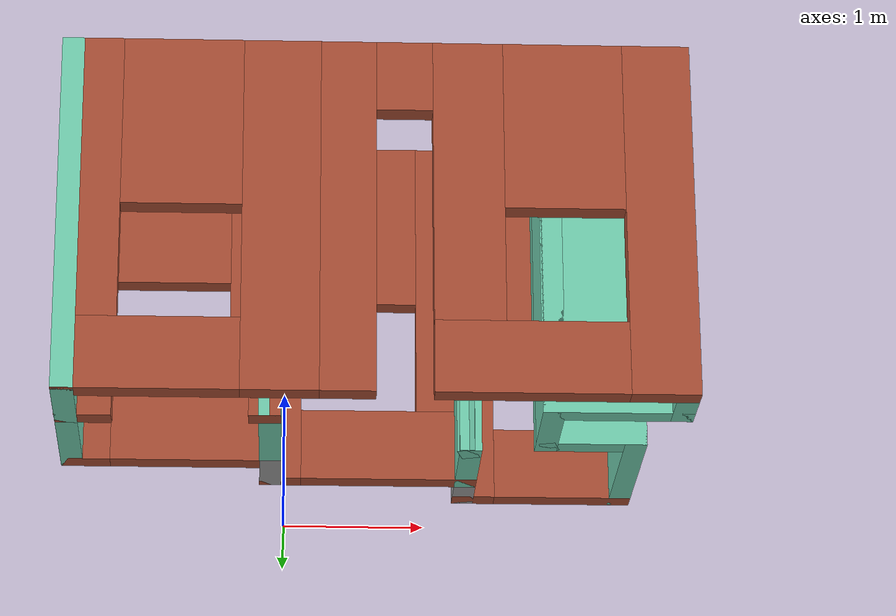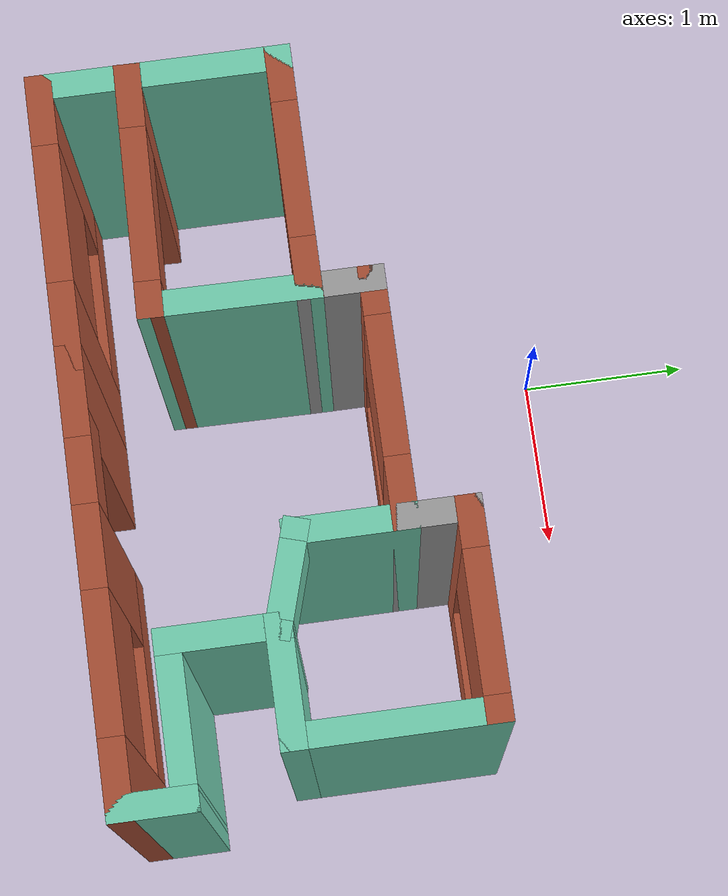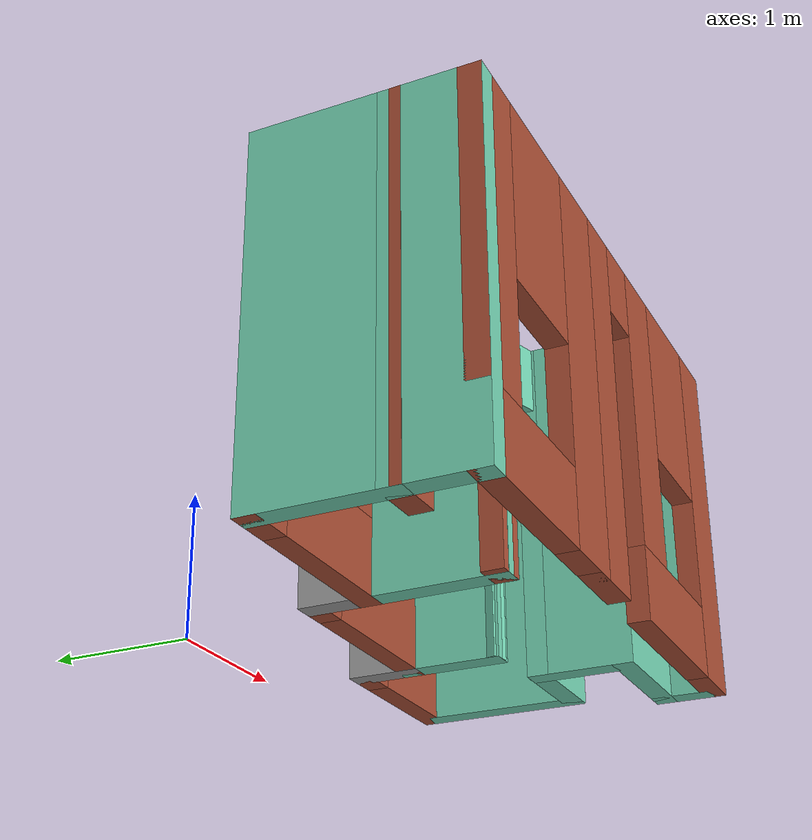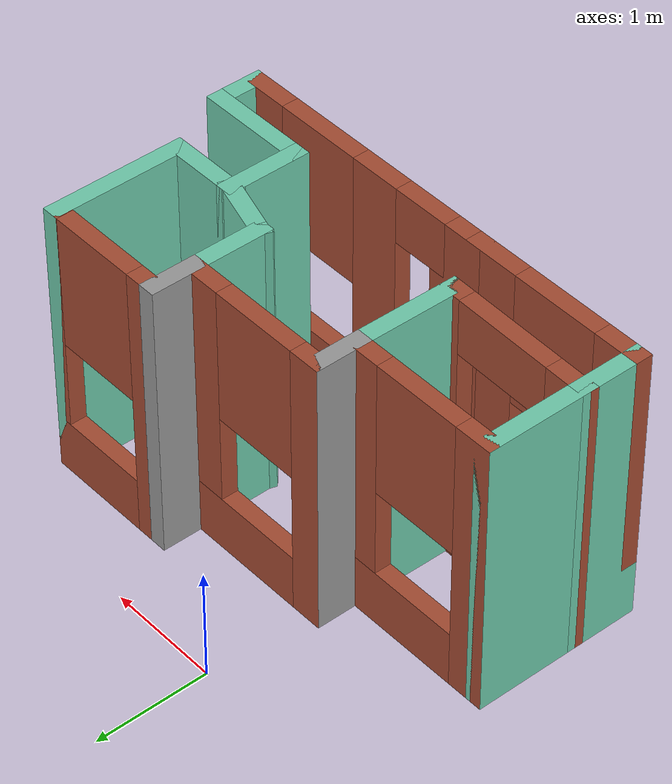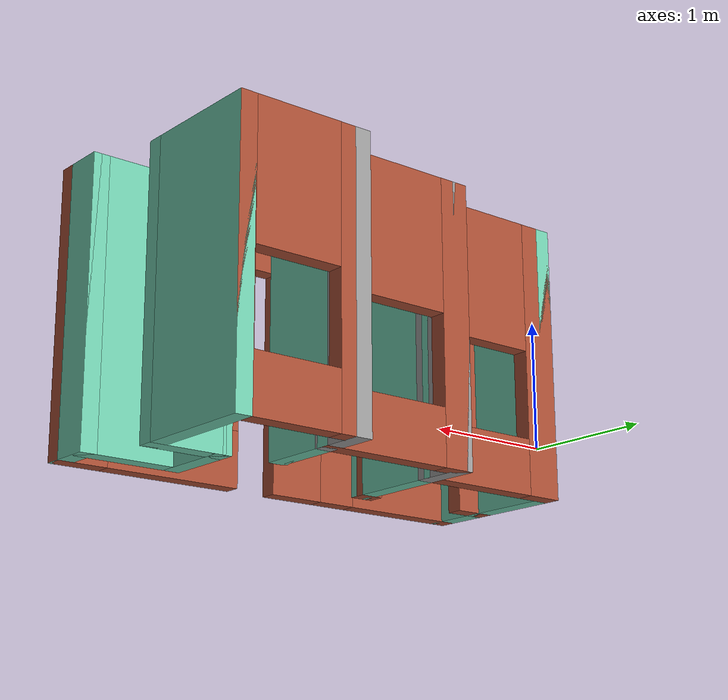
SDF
<?xml version='1.0'?>
<sdf version='1.7'>
  <model name='House'>
    <pose>0.57417 -1.3725 0 0 -0 0</pose>
    <link name='Wall_0'>
      <collision name='Wall_0_Collision'>
        <geometry>
          <box>
            <size>1 0.15 2.5</size>
          </box>
        </geometry>
        <pose>0 0 1.25 0 -0 0</pose>
      </collision>
      <visual name='Wall_0_Visual'>
        <pose>0 0 1.25 0 -0 0</pose>
        <geometry>
          <box>
            <size>1 0.15 2.5</size>
          </box>
        </geometry>
        <material>
          <script>
            <uri>file://media/materials/scripts/gazebo.material</uri>
            <name>Gazebo/Grey</name>
          </script>
          <ambient>0.435294 0.796078 0.67451 1</ambient>
        </material>
        <meta>
          <layer>0</layer>
        </meta>
      </visual>
      <pose>-2.02417 -0.3725 0 0 -0 1.5708</pose>
    </link>
    <link name='Wall_1'>
      <pose>-1.34917 0.0525 0 0 -0 0</pose>
      <visual name='Wall_1_Visual_0'>
        <pose>-0.5825 0 1.25 0 -0 0</pose>
        <geometry>
          <box>
            <size>0.335 0.15 2.5</size>
          </box>
        </geometry>
        <material>
          <script>
            <uri>file://media/materials/scripts/gazebo.material</uri>
            <name>Gazebo/Bricks</name>
          </script>
          <ambient>0.435294 0.796078 0.67451 1</ambient>
        </material>
        <meta>
          <layer>0</layer>
        </meta>
      </visual>
      <collision name='Wall_1_Collision_0'>
        <geometry>
          <box>
            <size>0.335 0.15 2.5</size>
          </box>
        </geometry>
        <pose>-0.5825 0 1.25 0 -0 0</pose>
      </collision>
      <visual name='Wall_1_Visual_1'>
        <pose>0.1675 0 0.25 0 -0 0</pose>
        <geometry>
          <box>
            <size>1.165 0.15 0.5</size>
          </box>
        </geometry>
        <material>
          <script>
            <uri>file://media/materials/scripts/gazebo.material</uri>
            <name>Gazebo/Bricks</name>
          </script>
          <ambient>0.435294 0.796078 0.67451 1</ambient>
        </material>
        <meta>
          <layer>0</layer>
        </meta>
      </visual>
      <collision name='Wall_1_Collision_1'>
        <geometry>
          <box>
            <size>1.165 0.15 0.5</size>
          </box>
        </geometry>
        <pose>0.1675 0 0.25 0 -0 0</pose>
      </collision>
      <visual name='Wall_1_Visual_2'>
        <pose>0.5675 0 1.5 0 -0 0</pose>
        <geometry>
          <box>
            <size>0.365 0.15 2</size>
          </box>
        </geometry>
        <material>
          <script>
            <uri>file://media/materials/scripts/gazebo.material</uri>
            <name>Gazebo/Bricks</name>
          </script>
          <ambient>0.435294 0.796078 0.67451 1</ambient>
        </material>
        <meta>
          <layer>0</layer>
        </meta>
      </visual>
      <collision name='Wall_1_Collision_2'>
        <geometry>
          <box>
            <size>0.365 0.15 2</size>
          </box>
        </geometry>
        <pose>0.5675 0 1.5 0 -0 0</pose>
      </collision>
      <visual name='Wall_1_Visual_3'>
        <pose>-0.015 0 1.9 0 -0 0</pose>
        <geometry>
          <box>
            <size>0.8 0.15 1.2</size>
          </box>
        </geometry>
        <material>
          <script>
            <uri>file://media/materials/scripts/gazebo.material</uri>
            <name>Gazebo/Bricks</name>
          </script>
          <ambient>0.435294 0.796078 0.67451 1</ambient>
        </material>
        <meta>
          <layer>0</layer>
        </meta>
      </visual>
      <collision name='Wall_1_Collision_3'>
        <geometry>
          <box>
            <size>0.8 0.15 1.2</size>
          </box>
        </geometry>
        <pose>-0.015 0 1.9 0 -0 0</pose>
      </collision>
    </link>
    <link name='Wall_10'>
      <collision name='Wall_10_Collision'>
        <geometry>
          <box>
            <size>0.5 0.15 2.5</size>
          </box>
        </geometry>
        <pose>0 0 1.25 0 -0 0</pose>
      </collision>
      <visual name='Wall_10_Visual'>
        <pose>0 0 1.25 0 -0 0</pose>
        <geometry>
          <box>
            <size>0.5 0.15 2.5</size>
          </box>
        </geometry>
        <material>
          <script>
            <uri>file://media/materials/scripts/gazebo.material</uri>
            <name>Gazebo/Grey</name>
          </script>
          <ambient>0.435294 0.796078 0.67451 1</ambient>
        </material>
        <meta>
          <layer>0</layer>
        </meta>
      </visual>
      <pose>2.02583 -1.1225 0 0 -0 -1.5708</pose>
    </link>
    <link name='Wall_11'>
      <pose>0.97583 -1.2975 0 0 -0 3.14159</pose>
      <visual name='Wall_11_Visual_0'>
        <pose>-0.8975 0 1.25 0 -0 0</pose>
        <geometry>
          <box>
            <size>0.455 0.15 2.5</size>
          </box>
        </geometry>
        <material>
          <script>
            <uri>file://media/materials/scripts/gazebo.material</uri>
            <name>Gazebo/Bricks</name>
          </script>
          <ambient>0.435294 0.796078 0.67451 1</ambient>
        </material>
        <meta>
          <layer>0</layer>
        </meta>
      </visual>
      <collision name='Wall_11_Collision_0'>
        <geometry>
          <box>
            <size>0.455 0.15 2.5</size>
          </box>
        </geometry>
        <pose>-0.8975 0 1.25 0 -0 0</pose>
      </collision>
      <visual name='Wall_11_Visual_1'>
        <pose>-0.035 0 0.25 0 -0 0</pose>
        <geometry>
          <box>
            <size>1.27 0.15 0.5</size>
          </box>
        </geometry>
        <material>
          <script>
            <uri>file://media/materials/scripts/gazebo.material</uri>
            <name>Gazebo/Bricks</name>
          </script>
          <ambient>0.435294 0.796078 0.67451 1</ambient>
        </material>
        <meta>
          <layer>0</layer>
        </meta>
      </visual>
      <collision name='Wall_11_Collision_1'>
        <geometry>
          <box>
            <size>1.27 0.15 0.5</size>
          </box>
        </geometry>
        <pose>-0.035 0 0.25 0 -0 0</pose>
      </collision>
      <visual name='Wall_11_Visual_2'>
        <pose>0.365 0 1.5 0 -0 0</pose>
        <geometry>
          <box>
            <size>0.47 0.15 2</size>
          </box>
        </geometry>
        <material>
          <script>
            <uri>file://media/materials/scripts/gazebo.material</uri>
            <name>Gazebo/Bricks</name>
          </script>
          <ambient>0.435294 0.796078 0.67451 1</ambient>
        </material>
        <meta>
          <layer>0</layer>
        </meta>
      </visual>
      <collision name='Wall_11_Collision_2'>
        <geometry>
          <box>
            <size>0.47 0.15 2</size>
          </box>
        </geometry>
        <pose>0.365 0 1.5 0 -0 0</pose>
      </collision>
      <visual name='Wall_11_Visual_3'>
        <pose>-0.27 0 1.9 0 -0 0</pose>
        <geometry>
          <box>
            <size>0.8 0.15 1.2</size>
          </box>
        </geometry>
        <material>
          <script>
            <uri>file://media/materials/scripts/gazebo.material</uri>
            <name>Gazebo/Bricks</name>
          </script>
          <ambient>0.435294 0.796078 0.67451 1</ambient>
        </material>
        <meta>
          <layer>0</layer>
        </meta>
      </visual>
      <collision name='Wall_11_Collision_3'>
        <geometry>
          <box>
            <size>0.8 0.15 1.2</size>
          </box>
        </geometry>
        <pose>-0.27 0 1.9 0 -0 0</pose>
      </collision>
      <visual name='Wall_11_Visual_4'>
        <pose>0.8625 0 2.25 0 -0 0</pose>
        <geometry>
          <box>
            <size>0.525 0.15 0.5</size>
          </box>
        </geometry>
        <material>
          <script>
            <uri>file://media/materials/scripts/gazebo.material</uri>
            <name>Gazebo/Bricks</name>
          </script>
          <ambient>0.435294 0.796078 0.67451 1</ambient>
        </material>
        <meta>
          <layer>0</layer>
        </meta>
      </visual>
      <collision name='Wall_11_Collision_4'>
        <geometry>
          <box>
            <size>0.525 0.15 0.5</size>
          </box>
        </geometry>
        <pose>0.8625 0 2.25 0 -0 0</pose>
      </collision>
    </link>
    <link name='Wall_15'>
      <pose>-1.23417 -1.2975 0 0 -0 3.14159</pose>
      <visual name='Wall_15_Visual_0'>
        <pose>-0.607813 0 1.25 0 -0 0</pose>
        <geometry>
          <box>
            <size>0.514375 0.15 2.5</size>
          </box>
        </geometry>
        <material>
          <script>
            <uri>file://media/materials/scripts/gazebo.material</uri>
            <name>Gazebo/Bricks</name>
          </script>
          <ambient>0.435294 0.796078 0.67451 1</ambient>
        </material>
        <meta>
          <layer>0</layer>
        </meta>
      </visual>
      <collision name='Wall_15_Collision_0'>
        <geometry>
          <box>
            <size>0.514375 0.15 2.5</size>
          </box>
        </geometry>
        <pose>-0.607813 0 1.25 0 -0 0</pose>
      </collision>
      <visual name='Wall_15_Visual_1'>
        <pose>0.257187 0 0.25 0 -0 0</pose>
        <geometry>
          <box>
            <size>1.21562 0.15 0.5</size>
          </box>
        </geometry>
        <material>
          <script>
            <uri>file://media/materials/scripts/gazebo.material</uri>
            <name>Gazebo/Bricks</name>
          </script>
          <ambient>0.435294 0.796078 0.67451 1</ambient>
        </material>
        <meta>
          <layer>0</layer>
        </meta>
      </visual>
      <collision name='Wall_15_Collision_1'>
        <geometry>
          <box>
            <size>1.21562 0.15 0.5</size>
          </box>
        </geometry>
        <pose>0.257187 0 0.25 0 -0 0</pose>
      </collision>
      <visual name='Wall_15_Visual_2'>
        <pose>0.657187 0 1.5 0 -0 0</pose>
        <geometry>
          <box>
            <size>0.415625 0.15 2</size>
          </box>
        </geometry>
        <material>
          <script>
            <uri>file://media/materials/scripts/gazebo.material</uri>
            <name>Gazebo/Bricks</name>
          </script>
          <ambient>0.435294 0.796078 0.67451 1</ambient>
        </material>
        <meta>
          <layer>0</layer>
        </meta>
      </visual>
      <collision name='Wall_15_Collision_2'>
        <geometry>
          <box>
            <size>0.415625 0.15 2</size>
          </box>
        </geometry>
        <pose>0.657187 0 1.5 0 -0 0</pose>
      </collision>
      <visual name='Wall_15_Visual_3'>
        <pose>0.049375 0 1.9 0 -0 0</pose>
        <geometry>
          <box>
            <size>0.8 0.15 1.2</size>
          </box>
        </geometry>
        <material>
          <script>
            <uri>file://media/materials/scripts/gazebo.material</uri>
            <name>Gazebo/Bricks</name>
          </script>
          <ambient>0.435294 0.796078 0.67451 1</ambient>
        </material>
        <meta>
          <layer>0</layer>
        </meta>
      </visual>
      <collision name='Wall_15_Collision_3'>
        <geometry>
          <box>
            <size>0.8 0.15 1.2</size>
          </box>
        </geometry>
        <pose>0.049375 0 1.9 0 -0 0</pose>
      </collision>
    </link>
    <link name='Wall_16'>
      <collision name='Wall_16_Collision'>
        <geometry>
          <box>
            <size>0.65 0.15 2.5</size>
          </box>
        </geometry>
        <pose>0 0 1.25 0 -0 0</pose>
      </collision>
      <visual name='Wall_16_Visual'>
        <pose>0 0 1.25 0 -0 0</pose>
        <geometry>
          <box>
            <size>0.65 0.15 2.5</size>
          </box>
        </geometry>
        <material>
          <script>
            <uri>file://media/materials/scripts/gazebo.material</uri>
            <name>Gazebo/Grey</name>
          </script>
          <ambient>0.435294 0.796078 0.67451 1</ambient>
        </material>
        <meta>
          <layer>0</layer>
        </meta>
      </visual>
      <pose>-2.02417 -1.0475 0 0 -0 1.5708</pose>
    </link>
    <link name='Wall_18'>
      <collision name='Wall_18_Collision'>
        <geometry>
          <box>
            <size>0.52 0.15 2.5</size>
          </box>
        </geometry>
        <pose>0 0 1.25 0 -0 0</pose>
      </collision>
      <visual name='Wall_18_Visual'>
        <pose>0 0 1.25 0 -0 0</pose>
        <geometry>
          <box>
            <size>0.52 0.15 2.5</size>
          </box>
        </geometry>
        <material>
          <script>
            <uri>file://media/materials/scripts/gazebo.material</uri>
            <name>Gazebo/Bricks</name>
          </script>
          <ambient>0.435294 0.796078 0.67451 1</ambient>
        </material>
        <meta>
          <layer>0</layer>
        </meta>
      </visual>
      <pose>-0.25917 -1.2975 0 0 -0 0</pose>
    </link>
    <link name='Wall_2'>
      <collision name='Wall_2_Collision'>
        <geometry>
          <box>
            <size>0.5 0.15 2.5</size>
          </box>
        </geometry>
        <pose>0 0 1.25 0 -0 0</pose>
      </collision>
      <visual name='Wall_2_Visual'>
        <pose>0 0 1.25 0 -0 0</pose>
        <geometry>
          <box>
            <size>0.5 0.15 2.5</size>
          </box>
        </geometry>
        <material>
          <script>
            <uri>file://media/materials/scripts/gazebo.material</uri>
            <name>Gazebo/Grey</name>
          </script>
          <ambient>1 1 1 1</ambient>
        </material>
        <meta>
          <layer>0</layer>
        </meta>
      </visual>
      <pose>-0.67417 0.2275 0 0 -0 1.5708</pose>
    </link>
    <link name='Wall_20'>
      <collision name='Wall_20_Collision'>
        <geometry>
          <box>
            <size>1.03006 0.15 2.5</size>
          </box>
        </geometry>
        <pose>0 0 1.25 0 -0 0</pose>
      </collision>
      <visual name='Wall_20_Visual'>
        <pose>0 0 1.25 0 -0 0</pose>
        <geometry>
          <box>
            <size>1.03006 0.15 2.5</size>
          </box>
        </geometry>
        <material>
          <script>
            <uri>file://media/materials/scripts/gazebo.material</uri>
            <name>Gazebo/Grey</name>
          </script>
          <ambient>0.435294 0.796078 0.67451 1</ambient>
        </material>
        <meta>
          <layer>0</layer>
        </meta>
      </visual>
      <pose>-0.67917 -0.3875 0 0 -0 1.55943</pose>
    </link>
    <link name='Wall_22'>
      <pose>-1.35417 -0.8125 0 0 -0 -0.022384</pose>
      <visual name='Wall_22_Visual_0'>
        <pose>-0.557426 0 1.25 0 -0 0</pose>
        <geometry>
          <box>
            <size>0.375484 0.15 2.5</size>
          </box>
        </geometry>
        <material>
          <script>
            <uri>file://media/materials/scripts/gazebo.material</uri>
            <name>Gazebo/Bricks</name>
          </script>
          <ambient>0.435294 0.796078 0.67451 1</ambient>
        </material>
        <meta>
          <layer>0</layer>
        </meta>
      </visual>
      <collision name='Wall_22_Collision_0'>
        <geometry>
          <box>
            <size>0.375484 0.15 2.5</size>
          </box>
        </geometry>
        <pose>-0.557426 0 1.25 0 -0 0</pose>
      </collision>
      <visual name='Wall_22_Visual_1'>
        <pose>0.637742 0 1.25 0 -0 0</pose>
        <geometry>
          <box>
            <size>0.214852 0.15 2.5</size>
          </box>
        </geometry>
        <material>
          <script>
            <uri>file://media/materials/scripts/gazebo.material</uri>
            <name>Gazebo/Bricks</name>
          </script>
          <ambient>0.435294 0.796078 0.67451 1</ambient>
        </material>
        <meta>
          <layer>0</layer>
        </meta>
      </visual>
      <collision name='Wall_22_Collision_1'>
        <geometry>
          <box>
            <size>0.214852 0.15 2.5</size>
          </box>
        </geometry>
        <pose>0.637742 0 1.25 0 -0 0</pose>
      </collision>
      <visual name='Wall_22_Visual_2'>
        <pose>0.080316 0 2.25 0 -0 0</pose>
        <geometry>
          <box>
            <size>0.9 0.15 0.5</size>
          </box>
        </geometry>
        <material>
          <script>
            <uri>file://media/materials/scripts/gazebo.material</uri>
            <name>Gazebo/Bricks</name>
          </script>
          <ambient>0.435294 0.796078 0.67451 1</ambient>
        </material>
        <meta>
          <layer>0</layer>
        </meta>
      </visual>
      <collision name='Wall_22_Collision_2'>
        <geometry>
          <box>
            <size>0.9 0.15 0.5</size>
          </box>
        </geometry>
        <pose>0.080316 0 2.25 0 -0 0</pose>
      </collision>
    </link>
    <link name='Wall_24'>
      <collision name='Wall_24_Collision'>
        <geometry>
          <box>
            <size>0.75 0.15 2.5</size>
          </box>
        </geometry>
        <pose>0 0 1.25 0 -0 0</pose>
      </collision>
      <visual name='Wall_24_Visual'>
        <pose>0 0 1.25 0 -0 0</pose>
        <geometry>
          <box>
            <size>0.75 0.15 2.5</size>
          </box>
        </geometry>
        <material>
          <script>
            <uri>file://media/materials/scripts/gazebo.material</uri>
            <name>Gazebo/Grey</name>
          </script>
          <ambient>0.435294 0.796078 0.67451 1</ambient>
        </material>
        <meta>
          <layer>0</layer>
        </meta>
      </visual>
      <pose>0.67583 0.1025 0 0 -0 -1.5708</pose>
    </link>
    <link name='Wall_25'>
      <pose>0.92583 -0.2725 0 0 -0 -0.291457</pose>
      <visual name='Wall_25_Visual_0'>
        <pose>-0.274473 0 1.25 0 -0 0</pose>
        <geometry>
          <box>
            <size>0.12307 0.15 2.5</size>
          </box>
        </geometry>
        <material>
          <script>
            <uri>file://media/materials/scripts/gazebo.material</uri>
            <name>Gazebo/Grey</name>
          </script>
          <ambient>0.435294 0.796078 0.67451 1</ambient>
        </material>
        <meta>
          <layer>0</layer>
        </meta>
      </visual>
      <collision name='Wall_25_Collision_0'>
        <geometry>
          <box>
            <size>0.12307 0.15 2.5</size>
          </box>
        </geometry>
        <pose>-0.274473 0 1.25 0 -0 0</pose>
      </collision>
      <visual name='Wall_25_Visual_1'>
        <pose>0.28022 0 1.25 0 -0 0</pose>
        <geometry>
          <box>
            <size>0.111576 0.15 2.5</size>
          </box>
        </geometry>
        <material>
          <script>
            <uri>file://media/materials/scripts/gazebo.material</uri>
            <name>Gazebo/Grey</name>
          </script>
          <ambient>0.435294 0.796078 0.67451 1</ambient>
        </material>
        <meta>
          <layer>0</layer>
        </meta>
      </visual>
      <collision name='Wall_25_Collision_1'>
        <geometry>
          <box>
            <size>0.111576 0.15 2.5</size>
          </box>
        </geometry>
        <pose>0.28022 0 1.25 0 -0 0</pose>
      </collision>
      <visual name='Wall_25_Visual_2'>
        <pose>0.005747 0 2.25 0 -0 0</pose>
        <geometry>
          <box>
            <size>0.43737 0.15 0.5</size>
          </box>
        </geometry>
        <material>
          <script>
            <uri>file://media/materials/scripts/gazebo.material</uri>
            <name>Gazebo/Grey</name>
          </script>
          <ambient>0.435294 0.796078 0.67451 1</ambient>
        </material>
        <meta>
          <layer>0</layer>
        </meta>
      </visual>
      <collision name='Wall_25_Collision_2'>
        <geometry>
          <box>
            <size>0.43737 0.15 0.5</size>
          </box>
        </geometry>
        <pose>0.005747 0 2.25 0 -0 0</pose>
      </collision>
    </link>
    <link name='Wall_3'>
      <pose>0.00083 0.4025 0 0 -0 0</pose>
      <visual name='Wall_3_Visual_0'>
        <pose>-0.6075 0 1.25 0 -0 0</pose>
        <geometry>
          <box>
            <size>0.285 0.15 2.5</size>
          </box>
        </geometry>
        <material>
          <script>
            <uri>file://media/materials/scripts/gazebo.material</uri>
            <name>Gazebo/Bricks</name>
          </script>
          <ambient>0.435294 0.796078 0.67451 1</ambient>
        </material>
        <meta>
          <layer>0</layer>
        </meta>
      </visual>
      <collision name='Wall_3_Collision_0'>
        <geometry>
          <box>
            <size>0.285 0.15 2.5</size>
          </box>
        </geometry>
        <pose>-0.6075 0 1.25 0 -0 0</pose>
      </collision>
      <visual name='Wall_3_Visual_1'>
        <pose>0.1425 0 0.25 0 -0 0</pose>
        <geometry>
          <box>
            <size>1.215 0.15 0.5</size>
          </box>
        </geometry>
        <material>
          <script>
            <uri>file://media/materials/scripts/gazebo.material</uri>
            <name>Gazebo/Bricks</name>
          </script>
          <ambient>0.435294 0.796078 0.67451 1</ambient>
        </material>
        <meta>
          <layer>0</layer>
        </meta>
      </visual>
      <collision name='Wall_3_Collision_1'>
        <geometry>
          <box>
            <size>1.215 0.15 0.5</size>
          </box>
        </geometry>
        <pose>0.1425 0 0.25 0 -0 0</pose>
      </collision>
      <visual name='Wall_3_Visual_2'>
        <pose>0.5425 0 1.5 0 -0 0</pose>
        <geometry>
          <box>
            <size>0.415 0.15 2</size>
          </box>
        </geometry>
        <material>
          <script>
            <uri>file://media/materials/scripts/gazebo.material</uri>
            <name>Gazebo/Bricks</name>
          </script>
          <ambient>0.435294 0.796078 0.67451 1</ambient>
        </material>
        <meta>
          <layer>0</layer>
        </meta>
      </visual>
      <collision name='Wall_3_Collision_2'>
        <geometry>
          <box>
            <size>0.415 0.15 2</size>
          </box>
        </geometry>
        <pose>0.5425 0 1.5 0 -0 0</pose>
      </collision>
      <visual name='Wall_3_Visual_3'>
        <pose>-0.065 0 1.9 0 -0 0</pose>
        <geometry>
          <box>
            <size>0.8 0.15 1.2</size>
          </box>
        </geometry>
        <material>
          <script>
            <uri>file://media/materials/scripts/gazebo.material</uri>
            <name>Gazebo/Bricks</name>
          </script>
          <ambient>0.435294 0.796078 0.67451 1</ambient>
        </material>
        <meta>
          <layer>0</layer>
        </meta>
      </visual>
      <collision name='Wall_3_Collision_3'>
        <geometry>
          <box>
            <size>0.8 0.15 1.2</size>
          </box>
        </geometry>
        <pose>-0.065 0 1.9 0 -0 0</pose>
      </collision>
    </link>
    <link name='Wall_4'>
      <collision name='Wall_4_Collision'>
        <geometry>
          <box>
            <size>0.5 0.15 2.5</size>
          </box>
        </geometry>
        <pose>0 0 1.25 0 -0 0</pose>
      </collision>
      <visual name='Wall_4_Visual'>
        <pose>0 0 1.25 0 -0 0</pose>
        <geometry>
          <box>
            <size>0.5 0.15 2.5</size>
          </box>
        </geometry>
        <material>
          <script>
            <uri>file://media/materials/scripts/gazebo.material</uri>
            <name>Gazebo/Grey</name>
          </script>
          <ambient>1 1 1 1</ambient>
        </material>
        <meta>
          <layer>0</layer>
        </meta>
      </visual>
      <pose>0.67583 0.5775 0 0 -0 1.5708</pose>
    </link>
    <link name='Wall_5'>
      <pose>1.22583 0.7525 0 0 -0 0</pose>
      <visual name='Wall_5_Visual_0'>
        <pose>-0.4775 0 1.25 0 -0 0</pose>
        <geometry>
          <box>
            <size>0.295 0.15 2.5</size>
          </box>
        </geometry>
        <material>
          <script>
            <uri>file://media/materials/scripts/gazebo.material</uri>
            <name>Gazebo/Bricks</name>
          </script>
          <ambient>0.435294 0.796078 0.67451 1</ambient>
        </material>
        <meta>
          <layer>0</layer>
        </meta>
      </visual>
      <collision name='Wall_5_Collision_0'>
        <geometry>
          <box>
            <size>0.295 0.15 2.5</size>
          </box>
        </geometry>
        <pose>-0.4775 0 1.25 0 -0 0</pose>
      </collision>
      <visual name='Wall_5_Visual_1'>
        <pose>0.1475 0 0.25 0 -0 0</pose>
        <geometry>
          <box>
            <size>0.955 0.15 0.5</size>
          </box>
        </geometry>
        <material>
          <script>
            <uri>file://media/materials/scripts/gazebo.material</uri>
            <name>Gazebo/Bricks</name>
          </script>
          <ambient>0.435294 0.796078 0.67451 1</ambient>
        </material>
        <meta>
          <layer>0</layer>
        </meta>
      </visual>
      <collision name='Wall_5_Collision_1'>
        <geometry>
          <box>
            <size>0.955 0.15 0.5</size>
          </box>
        </geometry>
        <pose>0.1475 0 0.25 0 -0 0</pose>
      </collision>
      <visual name='Wall_5_Visual_2'>
        <pose>0.5475 0 1.5 0 -0 0</pose>
        <geometry>
          <box>
            <size>0.155 0.15 2</size>
          </box>
        </geometry>
        <material>
          <script>
            <uri>file://media/materials/scripts/gazebo.material</uri>
            <name>Gazebo/Bricks</name>
          </script>
          <ambient>0.435294 0.796078 0.67451 1</ambient>
        </material>
        <meta>
          <layer>0</layer>
        </meta>
      </visual>
      <collision name='Wall_5_Collision_2'>
        <geometry>
          <box>
            <size>0.155 0.15 2</size>
          </box>
        </geometry>
        <pose>0.5475 0 1.5 0 -0 0</pose>
      </collision>
      <visual name='Wall_5_Visual_3'>
        <pose>0.07 0 1.9 0 -0 0</pose>
        <geometry>
          <box>
            <size>0.8 0.15 1.2</size>
          </box>
        </geometry>
        <material>
          <script>
            <uri>file://media/materials/scripts/gazebo.material</uri>
            <name>Gazebo/Bricks</name>
          </script>
          <ambient>0.435294 0.796078 0.67451 1</ambient>
        </material>
        <meta>
          <layer>0</layer>
        </meta>
      </visual>
      <collision name='Wall_5_Collision_3'>
        <geometry>
          <box>
            <size>0.8 0.15 1.2</size>
          </box>
        </geometry>
        <pose>0.07 0 1.9 0 -0 0</pose>
      </collision>
    </link>
    <link name='Wall_6'>
      <collision name='Wall_6_Collision'>
        <geometry>
          <box>
            <size>1.25 0.15 2.5</size>
          </box>
        </geometry>
        <pose>0 0 1.25 0 -0 0</pose>
      </collision>
      <visual name='Wall_6_Visual'>
        <pose>0 0 1.25 0 -0 0</pose>
        <geometry>
          <box>
            <size>1.25 0.15 2.5</size>
          </box>
        </geometry>
        <material>
          <script>
            <uri>file://media/materials/scripts/gazebo.material</uri>
            <name>Gazebo/Grey</name>
          </script>
          <ambient>0.435294 0.796078 0.67451 1</ambient>
        </material>
        <meta>
          <layer>0</layer>
        </meta>
      </visual>
      <pose>1.77583 0.2025 0 0 -0 -1.5708</pose>
    </link>
    <link name='Wall_7'>
      <collision name='Wall_7_Collision'>
        <geometry>
          <box>
            <size>0.75 0.15 2.5</size>
          </box>
        </geometry>
        <pose>0 0 1.25 0 -0 0</pose>
      </collision>
      <visual name='Wall_7_Visual'>
        <pose>0 0 1.25 0 -0 0</pose>
        <geometry>
          <box>
            <size>0.75 0.15 2.5</size>
          </box>
        </geometry>
        <material>
          <script>
            <uri>file://media/materials/scripts/gazebo.material</uri>
            <name>Gazebo/Grey</name>
          </script>
          <ambient>0.435294 0.796078 0.67451 1</ambient>
        </material>
        <meta>
          <layer>0</layer>
        </meta>
      </visual>
      <pose>1.47583 -0.3475 0 0 -0 3.14159</pose>
    </link>
    <link name='Wall_8'>
      <collision name='Wall_8_Collision'>
        <geometry>
          <box>
            <size>0.75 0.15 2.5</size>
          </box>
        </geometry>
        <pose>0 0 1.25 0 -0 0</pose>
      </collision>
      <visual name='Wall_8_Visual'>
        <pose>0 0 1.25 0 -0 0</pose>
        <geometry>
          <box>
            <size>0.75 0.15 2.5</size>
          </box>
        </geometry>
        <material>
          <script>
            <uri>file://media/materials/scripts/gazebo.material</uri>
            <name>Gazebo/Grey</name>
          </script>
          <ambient>0.435294 0.796078 0.67451 1</ambient>
        </material>
        <meta>
          <layer>0</layer>
        </meta>
      </visual>
      <pose>1.17583 -0.6475 0 0 -0 -1.5708</pose>
    </link>
    <link name='Wall_9'>
      <collision name='Wall_9_Collision'>
        <geometry>
          <box>
            <size>1 0.15 2.5</size>
          </box>
        </geometry>
        <pose>0 0 1.25 0 -0 0</pose>
      </collision>
      <visual name='Wall_9_Visual'>
        <pose>0 0 1.25 0 -0 0</pose>
        <geometry>
          <box>
            <size>1 0.15 2.5</size>
          </box>
        </geometry>
        <material>
          <script>
            <uri>file://media/materials/scripts/gazebo.material</uri>
            <name>Gazebo/Grey</name>
          </script>
          <ambient>0.435294 0.796078 0.67451 1</ambient>
        </material>
        <meta>
          <layer>0</layer>
        </meta>
      </visual>
      <pose>1.60083 -0.9475 0 0 -0 0</pose>
    </link>
    <static>1</static>
  </model>
</sdf>
